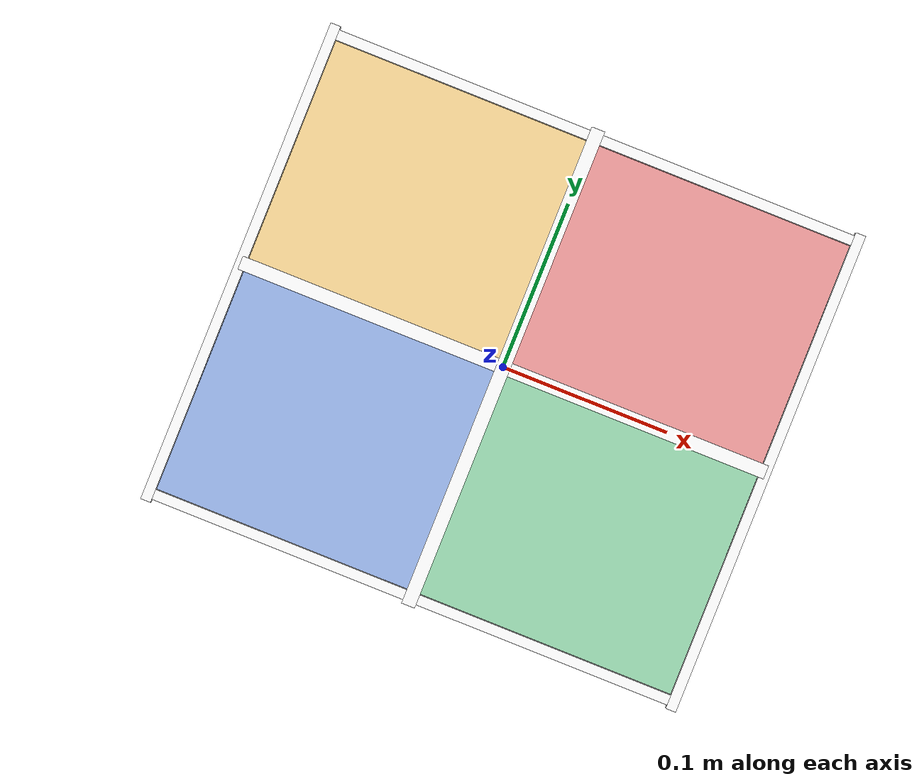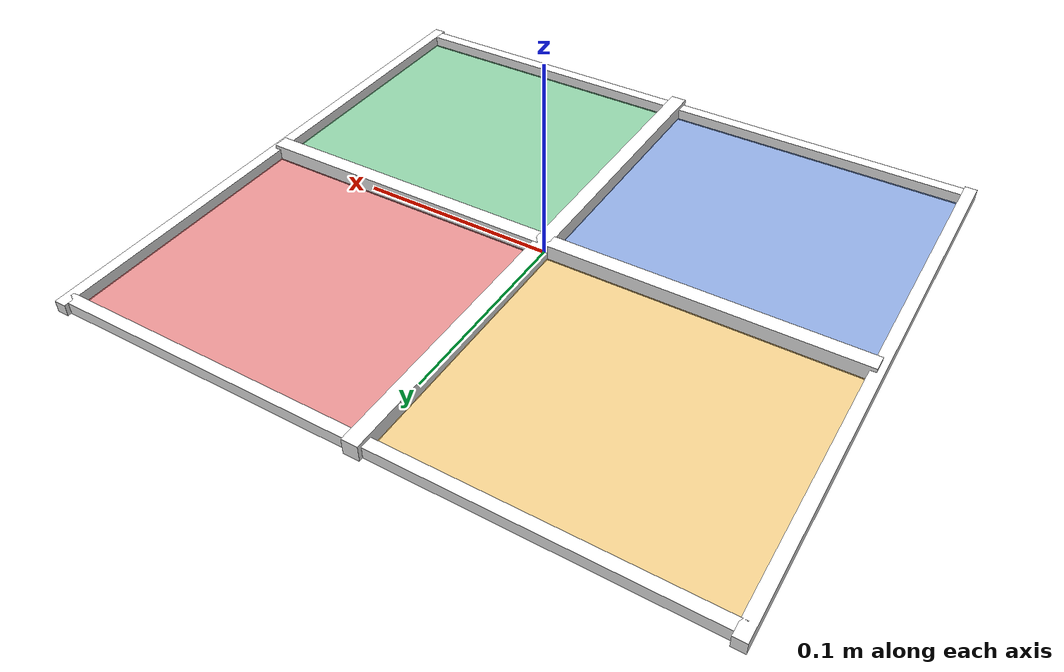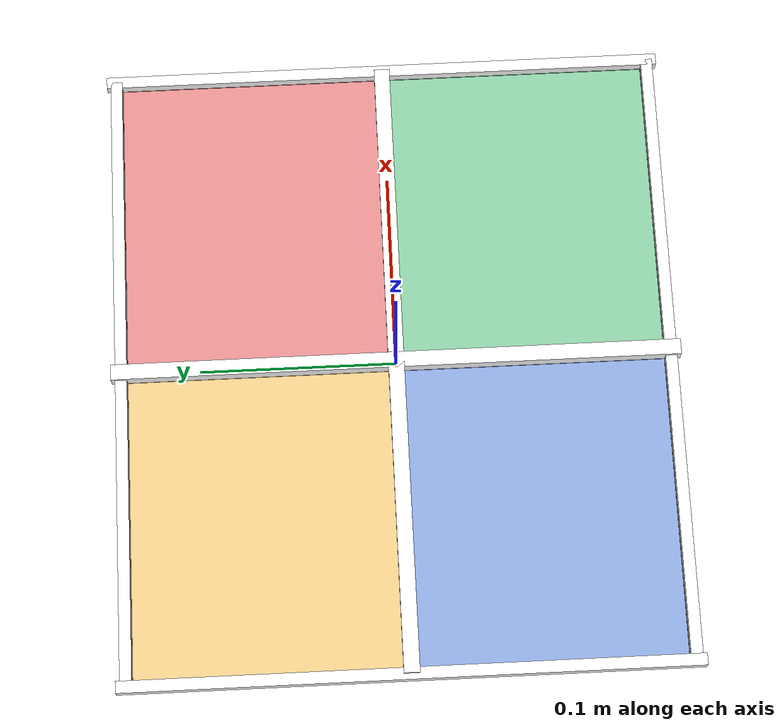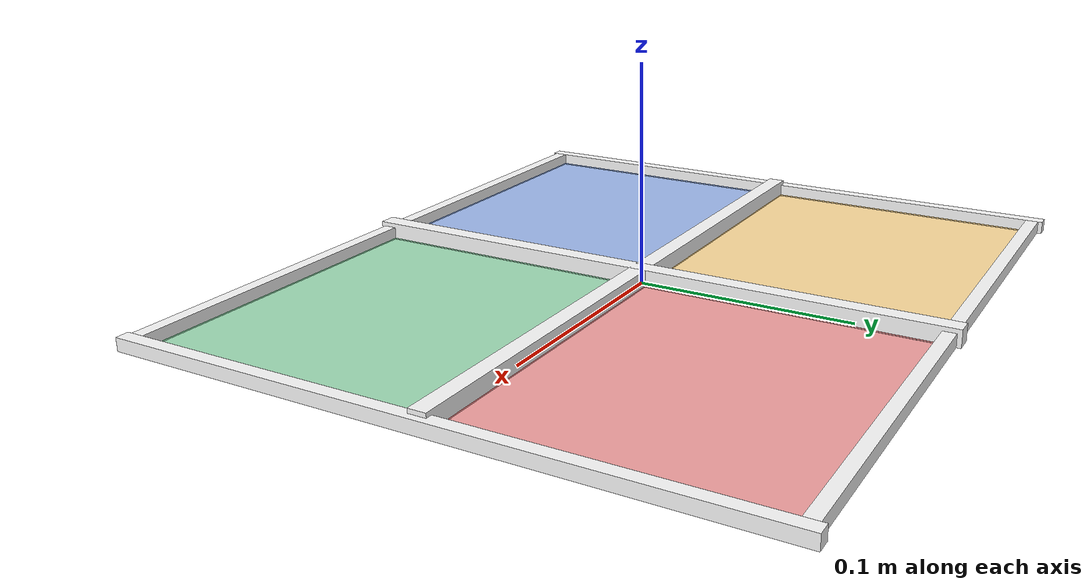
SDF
<?xml version="1.0"?>
<sdf version="1.8">
  <model name="sensoragent_target_grid_2x2">
    <static>true</static>
    <link name="grid">
      <visual name="area_1_visual">
        <pose>-0.08 -0.07 0.0005 0 0 0</pose>
        <geometry><plane><normal>0 0 1</normal><size>0.155 0.135</size></plane></geometry>
        <material>
          <ambient>0.10 0.34 0.80 0.45</ambient>
          <diffuse>0.10 0.34 0.80 0.45</diffuse>
        </material>
      </visual>
      <visual name="area_2_visual">
        <pose>0.08 -0.07 0.0005 0 0 0</pose>
        <geometry><plane><normal>0 0 1</normal><size>0.155 0.135</size></plane></geometry>
        <material>
          <ambient>0.10 0.65 0.30 0.45</ambient>
          <diffuse>0.10 0.65 0.30 0.45</diffuse>
        </material>
      </visual>
      <visual name="area_3_visual">
        <pose>-0.08 0.07 0.0005 0 0 0</pose>
        <geometry><plane><normal>0 0 1</normal><size>0.155 0.135</size></plane></geometry>
        <material>
          <ambient>0.95 0.65 0.08 0.45</ambient>
          <diffuse>0.95 0.65 0.08 0.45</diffuse>
        </material>
      </visual>
      <visual name="area_4_visual">
        <pose>0.08 0.07 0.0005 0 0 0</pose>
        <geometry><plane><normal>0 0 1</normal><size>0.155 0.135</size></plane></geometry>
        <material>
          <ambient>0.85 0.12 0.12 0.45</ambient>
          <diffuse>0.85 0.12 0.12 0.45</diffuse>
        </material>
      </visual>

      <visual name="outer_line_x_positive">
        <pose>0.16 0 0.003 0 0 0</pose>
        <geometry><box><size>0.006 0.29 0.006</size></box></geometry>
        <material><diffuse>1.0 1.0 1.0 1</diffuse></material>
      </visual>
      <collision name="outer_line_x_positive_collision">
        <pose>0.16 0 0.003 0 0 0</pose>
        <geometry><box><size>0.006 0.29 0.006</size></box></geometry>
      </collision>
      <visual name="outer_line_x_negative">
        <pose>-0.16 0 0.003 0 0 0</pose>
        <geometry><box><size>0.006 0.29 0.006</size></box></geometry>
        <material><diffuse>1.0 1.0 1.0 1</diffuse></material>
      </visual>
      <collision name="outer_line_x_negative_collision">
        <pose>-0.16 0 0.003 0 0 0</pose>
        <geometry><box><size>0.006 0.29 0.006</size></box></geometry>
      </collision>
      <visual name="outer_line_y_positive">
        <pose>0 0.14 0.003 0 0 0</pose>
        <geometry><box><size>0.32 0.006 0.006</size></box></geometry>
        <material><diffuse>1.0 1.0 1.0 1</diffuse></material>
      </visual>
      <collision name="outer_line_y_positive_collision">
        <pose>0 0.14 0.003 0 0 0</pose>
        <geometry><box><size>0.32 0.006 0.006</size></box></geometry>
      </collision>
      <visual name="outer_line_y_negative">
        <pose>0 -0.14 0.003 0 0 0</pose>
        <geometry><box><size>0.32 0.006 0.006</size></box></geometry>
        <material><diffuse>1.0 1.0 1.0 1</diffuse></material>
      </visual>
      <collision name="outer_line_y_negative_collision">
        <pose>0 -0.14 0.003 0 0 0</pose>
        <geometry><box><size>0.32 0.006 0.006</size></box></geometry>
      </collision>
      <visual name="center_line_x">
        <pose>0 0 0.004 0 0 0</pose>
        <geometry><box><size>0.008 0.29 0.008</size></box></geometry>
        <material><diffuse>1.0 1.0 1.0 1</diffuse></material>
      </visual>
      <collision name="center_line_x_collision">
        <pose>0 0 0.004 0 0 0</pose>
        <geometry><box><size>0.008 0.29 0.008</size></box></geometry>
      </collision>
      <visual name="center_line_y">
        <pose>0 0 0.004 0 0 0</pose>
        <geometry><box><size>0.32 0.008 0.008</size></box></geometry>
        <material><diffuse>1.0 1.0 1.0 1</diffuse></material>
      </visual>
      <collision name="center_line_y_collision">
        <pose>0 0 0.004 0 0 0</pose>
        <geometry><box><size>0.32 0.008 0.008</size></box></geometry>
      </collision>
    </link>
  </model>
</sdf>
